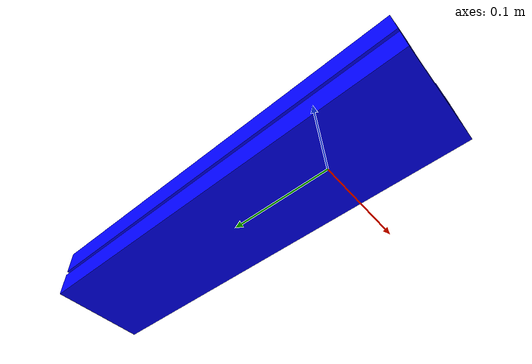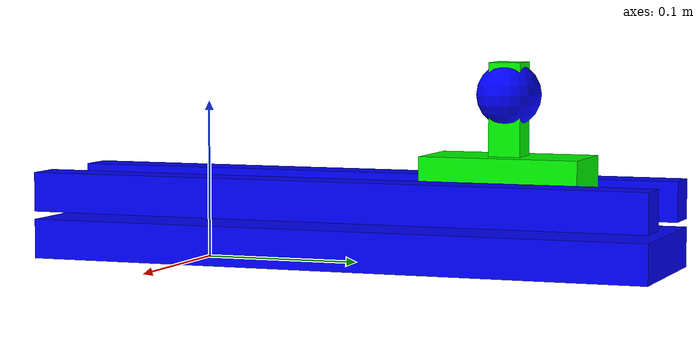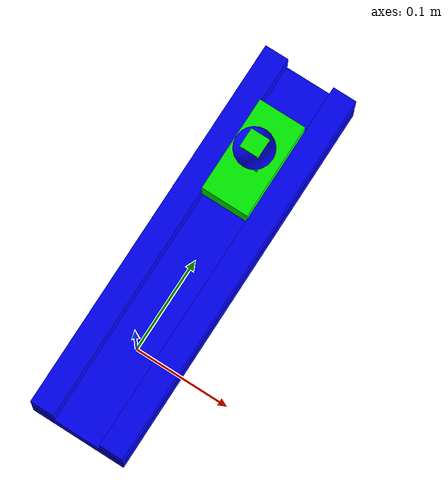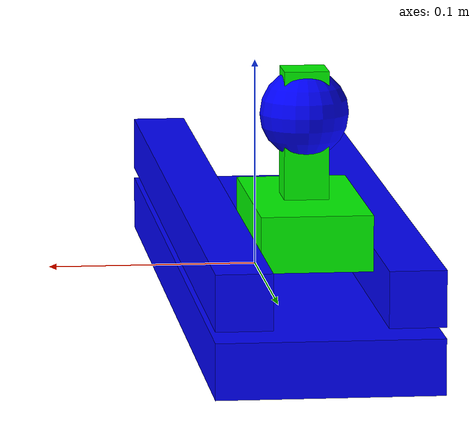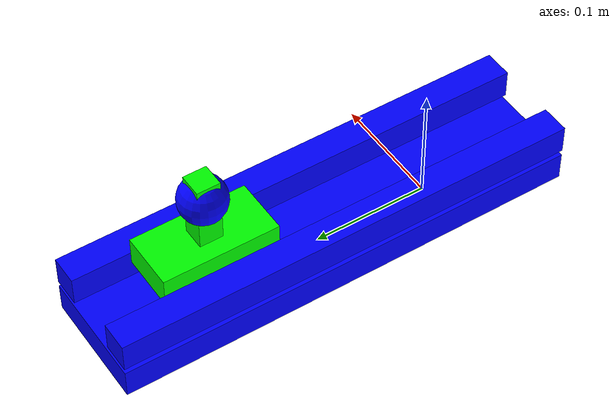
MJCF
<mujoco model="slide_model">
    <compiler angle="radian" />
    <worldbody>
    <body>
        <body name="object">
            <body name="base" pos="0 .1 .0125">
                <geom name="b1" type="box" size=".05 .2 .0125" pos="0 0 0" rgba="0 0 1 1" group="0"/>
                <geom name="s1" type="box" size=".0125 .2 .0125" pos=" .0375 0 .03" rgba="0 0 1 1" group="0"/>
                <geom name="s2" type="box" size=".0125 .2 .0125" pos="-.0375 0 .03" rgba="0 0 1 1" group="0"/>
            </body>

            <body name="link_1" pos="0 .2 .0575">
                <joint name="joint_1" pos="0 0 0" axis="0 -1 0" type="slide" damping="1" limited="true" range="0 0.4" />
                <geom name="slide" type="box" size=".0248 .05 .0125" pos="0 0 0" rgba="0 1 0 1" group="0"/>
                <geom name="grip" type="box" size=".01 .01 .03" pos="0 0 .04" rgba="0 1 0 1" group="0"/>
                <site name="handle" pos="0 0 .05" size="0.02" rgba="0 0 1 1" />
            </body>
        </body>
    <site name="bottom_site" pos="0 0 -0.3" rgba="0 0 0 0" size="0.005"/>
    <site name="top_site" pos="0 0 0.3" rgba="0 0 0 0" size="0.005"/>
    <site name="horizontal_radius_site" pos="0.3 0 0" rgba="0 0 0 0" size="0.1"/>
    </body>
    </worldbody>
</mujoco>
